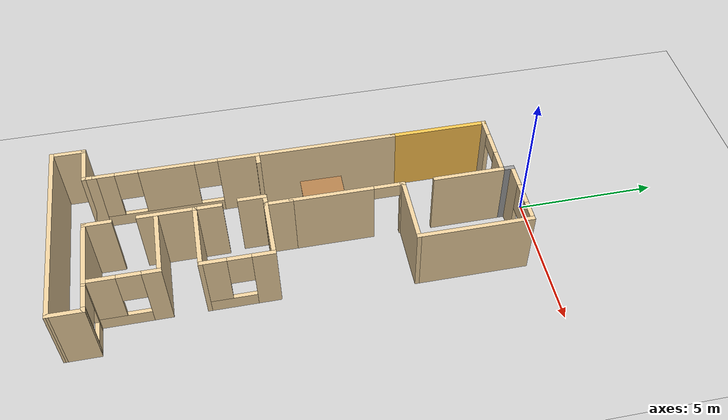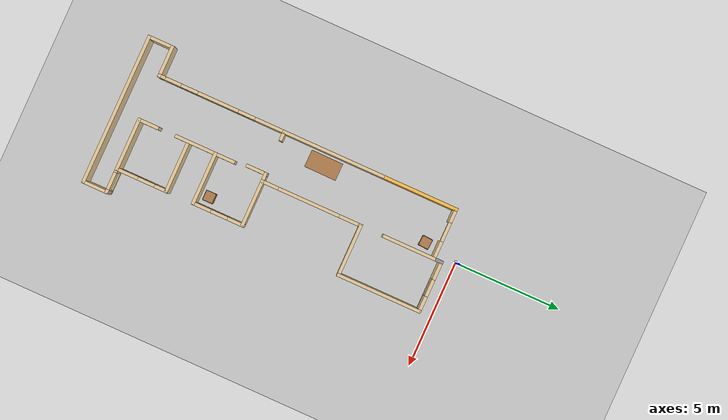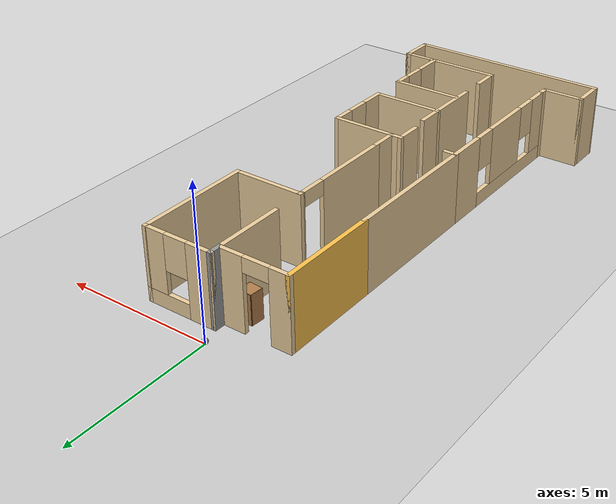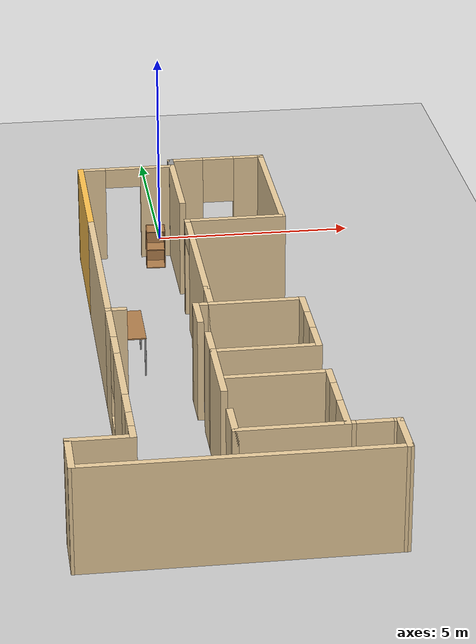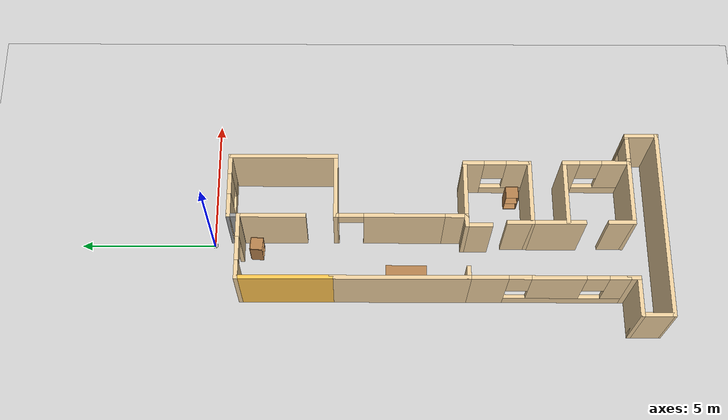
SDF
<sdf version="1.6">
 <world name="default">
  <light name="sun" type="directional">
   <pose>0 0 10 0 -0 0</pose>
   <diffuse>0.8 0.8 0.8 1</diffuse>
   <specular>0.2 0.2 0.2 1</specular>
   <attenuation>
    <range>1000</range>
    <constant>0.9</constant>
    <linear>0.01</linear>
    <quadratic>0.001</quadratic>
   </attenuation>
   <direction>-0.5 0.1 -0.9</direction>
  </light>
  <model name="ground_plane">
   <static>1</static>
   <link name="link">
    <collision name="collision">
     <geometry><plane><normal>0 0 1</normal><size>100 100</size></plane></geometry>
     <surface><friction><ode><mu>100</mu><mu2>50</mu2></ode></friction></surface>
    </collision>
    <visual name="visual">
     <cast_shadows>0</cast_shadows>
     <geometry><plane><normal>0 0 1</normal><size>100 100</size></plane></geometry>
     <material>
      <script><uri>file://media/materials/scripts/gazebo.material</uri><name>Gazebo/Grey</name></script>
     </material>
    </visual>
   </link>
  </model>
  <gravity>0 0 -9.8</gravity>
  <magnetic_field>6e-06 2.3e-05 -4.2e-05</magnetic_field>
  <atmosphere type="adiabatic"/>
  <physics name="default_physics" default="0" type="ode">
   <max_step_size>0.001</max_step_size>
   <real_time_factor>1</real_time_factor>
   <real_time_update_rate>1000</real_time_update_rate>
  </physics>
  <scene><ambient>0.4 0.4 0.4 1</ambient><background>0.7 0.7 0.7 1</background><shadows>1</shadows></scene>
  <spherical_coordinates>
   <surface_model>EARTH_WGS84</surface_model>
   <latitude_deg>0</latitude_deg>
   <longitude_deg>0</longitude_deg>
   <elevation>0</elevation>
   <heading_deg>0</heading_deg>
  </spherical_coordinates>
  <model name="my_appartment">
   <pose>-0.015 -8.49511 0 0 -0 0</pose>
   <link name="Wall_1">
    <pose>-0.93 7.45511 0 0 -0 0</pose>
    <visual name="Wall_1_Visual_0">
     <pose>-0.8975 0 1.25 0 -0 0</pose>
     <geometry><box><size>0.705 0.15 2.5</size></box></geometry>
     <material>
      <script><uri>file://media/materials/scripts/gazebo.material</uri><name>Gazebo/Grey</name></script>
      <ambient>0.921569 0.807843 0.615686 1</ambient>
     </material>
     <meta><layer>0</layer></meta>
    </visual>
    <collision name="Wall_1_Collision_0">
     <geometry><box><size>0.705 0.15 2.5</size></box></geometry>
     <pose>-0.8975 0 1.25 0 -0 0</pose>
    </collision>
    <visual name="Wall_1_Visual_1">
     <pose>0.8025 0 1.25 0 -0 0</pose>
     <geometry><box><size>0.895 0.15 2.5</size></box></geometry>
     <material>
      <script><uri>file://media/materials/scripts/gazebo.material</uri><name>Gazebo/Grey</name></script>
      <ambient>0.921569 0.807843 0.615686 1</ambient>
     </material>
     <meta><layer>0</layer></meta>
    </visual>
    <collision name="Wall_1_Collision_1">
     <geometry><box><size>0.895 0.15 2.5</size></box></geometry>
     <pose>0.8025 0 1.25 0 -0 0</pose>
    </collision>
    <visual name="Wall_1_Visual_2">
     <pose>-0.095 0 2.25 0 -0 0</pose>
     <geometry><box><size>0.9 0.15 0.5</size></box></geometry>
     <material>
      <script><uri>file://media/materials/scripts/gazebo.material</uri><name>Gazebo/Grey</name></script>
      <ambient>0.921569 0.807843 0.615686 1</ambient>
     </material>
     <meta><layer>0</layer></meta>
    </visual>
    <collision name="Wall_1_Collision_2">
     <geometry><box><size>0.9 0.15 0.5</size></box></geometry>
     <pose>-0.095 0 2.25 0 -0 0</pose>
    </collision>
   </link>
   <link name="Wall_11">
    <pose>0.245 2.04011 0 0 0 -1.5708</pose>
    <visual name="Wall_11_Visual_0">
     <pose>-1.9025 0 1.25 0 -0 0</pose>
     <geometry><box><size>0.195 0.15 2.5</size></box></geometry>
     <material>
      <script><uri>file://media/materials/scripts/gazebo.material</uri><name>Gazebo/Grey</name></script>
      <ambient>0.921569 0.807843 0.615686 1</ambient>
     </material>
     <meta><layer>0</layer></meta>
    </visual>
    <collision name="Wall_11_Collision_0">
     <geometry><box><size>0.195 0.15 2.5</size></box></geometry>
     <pose>-1.9025 0 1.25 0 -0 0</pose>
    </collision>
    <visual name="Wall_11_Visual_1">
     <pose>0.5475 0 1.25 0 -0 0</pose>
     <geometry><box><size>2.905 0.15 2.5</size></box></geometry>
     <material>
      <script><uri>file://media/materials/scripts/gazebo.material</uri><name>Gazebo/Grey</name></script>
      <ambient>0.921569 0.807843 0.615686 1</ambient>
     </material>
     <meta><layer>0</layer></meta>
    </visual>
    <collision name="Wall_11_Collision_1">
     <geometry><box><size>2.905 0.15 2.5</size></box></geometry>
     <pose>0.5475 0 1.25 0 -0 0</pose>
    </collision>
    <visual name="Wall_11_Visual_2">
     <pose>-1.355 0 2.25 0 -0 0</pose>
     <geometry><box><size>0.9 0.15 0.5</size></box></geometry>
     <material>
      <script><uri>file://media/materials/scripts/gazebo.material</uri><name>Gazebo/Grey</name></script>
      <ambient>0.921569 0.807843 0.615686 1</ambient>
     </material>
     <meta><layer>0</layer></meta>
    </visual>
    <collision name="Wall_11_Collision_2">
     <geometry><box><size>0.9 0.15 0.5</size></box></geometry>
     <pose>-1.355 0 2.25 0 -0 0</pose>
    </collision>
   </link>
   <link name="Wall_13">
    <collision name="Wall_13_Collision">
     <geometry><box><size>1 0.15 2.5</size></box></geometry>
     <pose>0 0 1.25 0 -0 0</pose>
    </collision>
    <visual name="Wall_13_Visual">
     <pose>0 0 1.25 0 -0 0</pose>
     <geometry><box><size>1 0.15 2.5</size></box></geometry>
     <material>
      <script><uri>file://media/materials/scripts/gazebo.material</uri><name>Gazebo/Grey</name></script>
      <ambient>0.921569 0.807843 0.615686 1</ambient>
     </material>
     <meta><layer>0</layer></meta>
    </visual>
    <pose>0.245 -0.309893 0 0 0 -1.5708</pose>
   </link>
   <link name="Wall_15">
    <collision name="Wall_15_Collision">
     <geometry><box><size>3.5 0.15 2.5</size></box></geometry>
     <pose>0 0 1.25 0 -0 0</pose>
    </collision>
    <visual name="Wall_15_Visual">
     <pose>0 0 1.25 0 -0 0</pose>
     <geometry><box><size>3.5 0.15 2.5</size></box></geometry>
     <material>
      <script><uri>file://media/materials/scripts/gazebo.material</uri><name>Gazebo/Grey</name></script>
      <ambient>1 0.764706 0.305882 1</ambient>
     </material>
     <meta><layer>0</layer></meta>
    </visual>
    <pose>-2.105 5.78011 0 0 0 -1.5708</pose>
   </link>
   <link name="Wall_18">
    <collision name="Wall_18_Collision">
     <geometry><box><size>5 0.15 2.5</size></box></geometry>
     <pose>0 0 1.25 0 -0 0</pose>
    </collision>
    <visual name="Wall_18_Visual">
     <pose>0 0 1.25 0 -0 0</pose>
     <geometry><box><size>5 0.15 2.5</size></box></geometry>
     <material>
      <script><uri>file://media/materials/scripts/gazebo.material</uri><name>Gazebo/Grey</name></script>
      <ambient>0.921569 0.807843 0.615686 1</ambient>
     </material>
     <meta><layer>0</layer></meta>
    </visual>
    <pose>-2.105 1.68011 0 0 0 -1.5708</pose>
   </link>
   <link name="Wall_19">
    <collision name="Wall_19_Collision">
     <geometry><box><size>0.5 0.15 2.5</size></box></geometry>
     <pose>0 0 1.25 0 -0 0</pose>
    </collision>
    <visual name="Wall_19_Visual">
     <pose>0 0 1.25 0 -0 0</pose>
     <geometry><box><size>0.5 0.15 2.5</size></box></geometry>
     <material>
      <script><uri>file://media/materials/scripts/gazebo.material</uri><name>Gazebo/Grey</name></script>
      <ambient>0.921569 0.807843 0.615686 1</ambient>
     </material>
     <meta><layer>0</layer></meta>
    </visual>
    <pose>-1.93 -0.744892 0 0 -0 0</pose>
   </link>
   <link name="Wall_2">
    <collision name="Wall_2_Collision">
     <geometry><box><size>0.52 0.15 2.5</size></box></geometry>
     <pose>0 0 1.25 0 -0 0</pose>
    </collision>
    <visual name="Wall_2_Visual">
     <pose>0 0 1.25 0 -0 0</pose>
     <geometry><box><size>0.52 0.15 2.5</size></box></geometry>
     <material>
      <script><uri>file://media/materials/scripts/gazebo.material</uri><name>Gazebo/Grey</name></script>
      <ambient>1 1 1 1</ambient>
     </material>
     <meta><layer>0</layer></meta>
    </visual>
    <pose>0.245 7.63011 0 0 -0 1.5708</pose>
   </link>
   <link name="Wall_21">
    <collision name="Wall_21_Collision">
     <geometry><box><size>0.5 0.15 2.5</size></box></geometry>
     <pose>0 0 1.25 0 -0 0</pose>
    </collision>
    <visual name="Wall_21_Visual">
     <pose>0 0 1.25 0 -0 0</pose>
     <geometry><box><size>0.5 0.15 2.5</size></box></geometry>
     <material>
      <script><uri>file://media/materials/scripts/gazebo.material</uri><name>Gazebo/Grey</name></script>
      <ambient>0.921569 0.807843 0.615686 1</ambient>
     </material>
     <meta><layer>0</layer></meta>
    </visual>
    <pose>0.07 -0.734892 0 0 -0 3.14159</pose>
   </link>
   <link name="Wall_23">
    <collision name="Wall_23_Collision">
     <geometry><box><size>1 0.15 2.5</size></box></geometry>
     <pose>0 0 1.25 0 -0 0</pose>
    </collision>
    <visual name="Wall_23_Visual">
     <pose>0 0 1.25 0 -0 0</pose>
     <geometry><box><size>1 0.15 2.5</size></box></geometry>
     <material>
      <script><uri>file://media/materials/scripts/gazebo.material</uri><name>Gazebo/Grey</name></script>
      <ambient>0.921569 0.807843 0.615686 1</ambient>
     </material>
     <meta><layer>0</layer></meta>
    </visual>
    <pose>-0.105 -1.15989 0 0 0 -1.5708</pose>
   </link>
   <link name="Wall_25">
    <collision name="Wall_25_Collision">
     <geometry><box><size>2.25 0.15 2.5</size></box></geometry>
     <pose>0 0 1.25 0 -0 0</pose>
    </collision>
    <visual name="Wall_25_Visual">
     <pose>0 0 1.25 0 -0 0</pose>
     <geometry><box><size>2.25 0.15 2.5</size></box></geometry>
     <material>
      <script><uri>file://media/materials/scripts/gazebo.material</uri><name>Gazebo/Grey</name></script>
      <ambient>0.921569 0.807843 0.615686 1</ambient>
     </material>
     <meta><layer>0</layer></meta>
    </visual>
    <pose>1.295 -0.734892 0 0 -0 0</pose>
   </link>
   <link name="Wall_26">
    <pose>2.345 -1.90989 0 0 0 -1.5708</pose>
    <visual name="Wall_26_Visual_0">
     <pose>-0.8575 0 1.25 0 -0 0</pose>
     <geometry><box><size>0.785 0.15 2.5</size></box></geometry>
     <material>
      <script><uri>file://media/materials/scripts/gazebo.material</uri><name>Gazebo/Grey</name></script>
      <ambient>0.921569 0.807843 0.615686 1</ambient>
     </material>
     <meta><layer>0</layer></meta>
    </visual>
    <collision name="Wall_26_Collision_0">
     <geometry><box><size>0.785 0.15 2.5</size></box></geometry>
     <pose>-0.8575 0 1.25 0 -0 0</pose>
    </collision>
    <visual name="Wall_26_Visual_1">
     <pose>0.3925 0 0.25 0 -0 0</pose>
     <geometry><box><size>1.715 0.15 0.5</size></box></geometry>
     <material>
      <script><uri>file://media/materials/scripts/gazebo.material</uri><name>Gazebo/Grey</name></script>
      <ambient>0.921569 0.807843 0.615686 1</ambient>
     </material>
     <meta><layer>0</layer></meta>
    </visual>
    <collision name="Wall_26_Collision_1">
     <geometry><box><size>1.715 0.15 0.5</size></box></geometry>
     <pose>0.3925 0 0.25 0 -0 0</pose>
    </collision>
    <visual name="Wall_26_Visual_2">
     <pose>0.7925 0 1.5 0 -0 0</pose>
     <geometry><box><size>0.915 0.15 2</size></box></geometry>
     <material>
      <script><uri>file://media/materials/scripts/gazebo.material</uri><name>Gazebo/Grey</name></script>
      <ambient>0.921569 0.807843 0.615686 1</ambient>
     </material>
     <meta><layer>0</layer></meta>
    </visual>
    <collision name="Wall_26_Collision_2">
     <geometry><box><size>0.915 0.15 2</size></box></geometry>
     <pose>0.7925 0 1.5 0 -0 0</pose>
    </collision>
    <visual name="Wall_26_Visual_3">
     <pose>-0.065 0 1.9 0 -0 0</pose>
     <geometry><box><size>0.8 0.15 1.2</size></box></geometry>
     <material>
      <script><uri>file://media/materials/scripts/gazebo.material</uri><name>Gazebo/Grey</name></script>
      <ambient>0.921569 0.807843 0.615686 1</ambient>
     </material>
     <meta><layer>0</layer></meta>
    </visual>
    <collision name="Wall_26_Collision_3">
     <geometry><box><size>0.8 0.15 1.2</size></box></geometry>
     <pose>-0.065 0 1.9 0 -0 0</pose>
    </collision>
   </link>
   <link name="Wall_29">
    <collision name="Wall_29_Collision">
     <geometry><box><size>2.5 0.15 2.5</size></box></geometry>
     <pose>0 0 1.25 0 -0 0</pose>
    </collision>
    <visual name="Wall_29_Visual">
     <pose>0 0 1.25 0 -0 0</pose>
     <geometry><box><size>2.5 0.15 2.5</size></box></geometry>
     <material>
      <script><uri>file://media/materials/scripts/gazebo.material</uri><name>Gazebo/Grey</name></script>
      <ambient>0.921569 0.807843 0.615686 1</ambient>
     </material>
     <meta><layer>0</layer></meta>
    </visual>
    <pose>1.17 -3.08489 0 0 -0 3.14159</pose>
   </link>
   <link name="Wall_30">
    <collision name="Wall_30_Collision">
     <geometry><box><size>1 0.15 2.5</size></box></geometry>
     <pose>0 0 1.25 0 -0 0</pose>
    </collision>
    <visual name="Wall_30_Visual">
     <pose>0 0 1.25 0 -0 0</pose>
     <geometry><box><size>1 0.15 2.5</size></box></geometry>
     <material>
      <script><uri>file://media/materials/scripts/gazebo.material</uri><name>Gazebo/Grey</name></script>
      <ambient>0.921569 0.807843 0.615686 1</ambient>
     </material>
     <meta><layer>0</layer></meta>
    </visual>
    <pose>-0.005 -2.65989 0 0 -0 1.5708</pose>
   </link>
   <link name="Wall_32">
    <collision name="Wall_32_Collision">
     <geometry><box><size>2 0.15 2.5</size></box></geometry>
     <pose>0 0 1.25 0 -0 0</pose>
    </collision>
    <visual name="Wall_32_Visual">
     <pose>0 0 1.25 0 -0 0</pose>
     <geometry><box><size>2 0.15 2.5</size></box></geometry>
     <material>
      <script><uri>file://media/materials/scripts/gazebo.material</uri><name>Gazebo/Grey</name></script>
      <ambient>0.921569 0.807843 0.615686 1</ambient>
     </material>
     <meta><layer>0</layer></meta>
    </visual>
    <pose>-0.005 -4.00989 0 0 0 -1.5708</pose>
   </link>
   <link name="Wall_34">
    <collision name="Wall_34_Collision">
     <geometry><box><size>2.5 0.15 2.5</size></box></geometry>
     <pose>0 0 1.25 0 -0 0</pose>
    </collision>
    <visual name="Wall_34_Visual">
     <pose>0 0 1.25 0 -0 0</pose>
     <geometry><box><size>2.5 0.15 2.5</size></box></geometry>
     <material>
      <script><uri>file://media/materials/scripts/gazebo.material</uri><name>Gazebo/Grey</name></script>
      <ambient>0.921569 0.807843 0.615686 1</ambient>
     </material>
     <meta><layer>0</layer></meta>
    </visual>
    <pose>1.18 -4.36489 0 0 -0 0</pose>
   </link>
   <link name="Wall_36">
    <pose>2.355 -5.53989 0 0 0 -1.5708</pose>
    <visual name="Wall_36_Visual_0">
     <pose>-0.9325 0 1.25 0 -0 0</pose>
     <geometry><box><size>0.635 0.15 2.5</size></box></geometry>
     <material>
      <script><uri>file://media/materials/scripts/gazebo.material</uri><name>Gazebo/Grey</name></script>
      <ambient>0.921569 0.807843 0.615686 1</ambient>
     </material>
     <meta><layer>0</layer></meta>
    </visual>
    <collision name="Wall_36_Collision_0">
     <geometry><box><size>0.635 0.15 2.5</size></box></geometry>
     <pose>-0.9325 0 1.25 0 -0 0</pose>
    </collision>
    <visual name="Wall_36_Visual_1">
     <pose>0.3175 0 0.25 0 -0 0</pose>
     <geometry><box><size>1.865 0.15 0.5</size></box></geometry>
     <material>
      <script><uri>file://media/materials/scripts/gazebo.material</uri><name>Gazebo/Grey</name></script>
      <ambient>0.921569 0.807843 0.615686 1</ambient>
     </material>
     <meta><layer>0</layer></meta>
    </visual>
    <collision name="Wall_36_Collision_1">
     <geometry><box><size>1.865 0.15 0.5</size></box></geometry>
     <pose>0.3175 0 0.25 0 -0 0</pose>
    </collision>
    <visual name="Wall_36_Visual_2">
     <pose>0.7175 0 1.5 0 -0 0</pose>
     <geometry><box><size>1.065 0.15 2</size></box></geometry>
     <material>
      <script><uri>file://media/materials/scripts/gazebo.material</uri><name>Gazebo/Grey</name></script>
      <ambient>0.921569 0.807843 0.615686 1</ambient>
     </material>
     <meta><layer>0</layer></meta>
    </visual>
    <collision name="Wall_36_Collision_2">
     <geometry><box><size>1.065 0.15 2</size></box></geometry>
     <pose>0.7175 0 1.5 0 -0 0</pose>
    </collision>
    <visual name="Wall_36_Visual_3">
     <pose>-0.215 0 1.9 0 -0 0</pose>
     <geometry><box><size>0.8 0.15 1.2</size></box></geometry>
     <material>
      <script><uri>file://media/materials/scripts/gazebo.material</uri><name>Gazebo/Grey</name></script>
      <ambient>0.921569 0.807843 0.615686 1</ambient>
     </material>
     <meta><layer>0</layer></meta>
    </visual>
    <collision name="Wall_36_Collision_3">
     <geometry><box><size>0.8 0.15 1.2</size></box></geometry>
     <pose>-0.215 0 1.9 0 -0 0</pose>
    </collision>
   </link>
   <link name="Wall_37">
    <collision name="Wall_37_Collision">
     <geometry><box><size>2.5 0.15 2.5</size></box></geometry>
     <pose>0 0 1.25 0 -0 0</pose>
    </collision>
    <visual name="Wall_37_Visual">
     <pose>0 0 1.25 0 -0 0</pose>
     <geometry><box><size>2.5 0.15 2.5</size></box></geometry>
     <material>
      <script><uri>file://media/materials/scripts/gazebo.material</uri><name>Gazebo/Grey</name></script>
      <ambient>0.921569 0.807843 0.615686 1</ambient>
     </material>
     <meta><layer>0</layer></meta>
    </visual>
    <pose>1.18 -6.71489 0 0 -0 3.14159</pose>
   </link>
   <link name="Wall_38">
    <collision name="Wall_38_Collision">
     <geometry><box><size>1 0.15 2.5</size></box></geometry>
     <pose>0 0 1.25 0 -0 0</pose>
    </collision>
    <visual name="Wall_38_Visual">
     <pose>0 0 1.25 0 -0 0</pose>
     <geometry><box><size>1 0.15 2.5</size></box></geometry>
     <material>
      <script><uri>file://media/materials/scripts/gazebo.material</uri><name>Gazebo/Grey</name></script>
      <ambient>0.921569 0.807843 0.615686 1</ambient>
     </material>
     <meta><layer>0</layer></meta>
    </visual>
    <pose>0.005 -6.28989 0 0 -0 1.5708</pose>
   </link>
   <link name="Wall_4">
    <pose>1.42 7.81511 0 0 -0 0</pose>
    <visual name="Wall_4_Visual_0">
     <pose>-0.7925 0 1.25 0 -0 0</pose>
     <geometry><box><size>0.915 0.15 2.5</size></box></geometry>
     <material>
      <script><uri>file://media/materials/scripts/gazebo.material</uri><name>Gazebo/Grey</name></script>
      <ambient>0.921569 0.807843 0.615686 1</ambient>
     </material>
     <meta><layer>0</layer></meta>
    </visual>
    <collision name="Wall_4_Collision_0">
     <geometry><box><size>0.915 0.15 2.5</size></box></geometry>
     <pose>-0.7925 0 1.25 0 -0 0</pose>
    </collision>
    <visual name="Wall_4_Visual_1">
     <pose>0.4575 0 0.25 0 -0 0</pose>
     <geometry><box><size>1.585 0.15 0.5</size></box></geometry>
     <material>
      <script><uri>file://media/materials/scripts/gazebo.material</uri><name>Gazebo/Grey</name></script>
      <ambient>0.921569 0.807843 0.615686 1</ambient>
     </material>
     <meta><layer>0</layer></meta>
    </visual>
    <collision name="Wall_4_Collision_1">
     <geometry><box><size>1.585 0.15 0.5</size></box></geometry>
     <pose>0.4575 0 0.25 0 -0 0</pose>
    </collision>
    <visual name="Wall_4_Visual_2">
     <pose>0.8575 0 1.5 0 -0 0</pose>
     <geometry><box><size>0.785 0.15 2</size></box></geometry>
     <material>
      <script><uri>file://media/materials/scripts/gazebo.material</uri><name>Gazebo/Grey</name></script>
      <ambient>0.921569 0.807843 0.615686 1</ambient>
     </material>
     <meta><layer>0</layer></meta>
    </visual>
    <collision name="Wall_4_Collision_2">
     <geometry><box><size>0.785 0.15 2</size></box></geometry>
     <pose>0.8575 0 1.5 0 -0 0</pose>
    </collision>
    <visual name="Wall_4_Visual_3">
     <pose>0.065 0 1.9 0 -0 0</pose>
     <geometry><box><size>0.8 0.15 1.2</size></box></geometry>
     <material>
      <script><uri>file://media/materials/scripts/gazebo.material</uri><name>Gazebo/Grey</name></script>
      <ambient>0.921569 0.807843 0.615686 1</ambient>
     </material>
     <meta><layer>0</layer></meta>
    </visual>
    <collision name="Wall_4_Collision_3">
     <geometry><box><size>0.8 0.15 1.2</size></box></geometry>
     <pose>0.065 0 1.9 0 -0 0</pose>
    </collision>
   </link>
   <link name="Wall_40">
    <pose>-2.105 -3.54489 0 0 0 -1.5708</pose>
    <visual name="Wall_40_Visual_0">
     <pose>-2.1425 0 1.25 0 -0 0</pose>
     <geometry><box><size>1.465 0.15 2.5</size></box></geometry>
     <material>
      <script><uri>file://media/materials/scripts/gazebo.material</uri><name>Gazebo/Grey</name></script>
      <ambient>0.921569 0.807843 0.615686 1</ambient>
     </material>
     <meta><layer>0</layer></meta>
    </visual>
    <collision name="Wall_40_Collision_0">
     <geometry><box><size>1.465 0.15 2.5</size></box></geometry>
     <pose>-2.1425 0 1.25 0 -0 0</pose>
    </collision>
    <visual name="Wall_40_Visual_1">
     <pose>0.7325 0 0.25 0 -0 0</pose>
     <geometry><box><size>4.285 0.15 0.5</size></box></geometry>
     <material>
      <script><uri>file://media/materials/scripts/gazebo.material</uri><name>Gazebo/Grey</name></script>
      <ambient>0.921569 0.807843 0.615686 1</ambient>
     </material>
     <meta><layer>0</layer></meta>
    </visual>
    <collision name="Wall_40_Collision_1">
     <geometry><box><size>4.285 0.15 0.5</size></box></geometry>
     <pose>0.7325 0 0.25 0 -0 0</pose>
    </collision>
    <visual name="Wall_40_Visual_2">
     <pose>0.355 0 1.5 0 -0 0</pose>
     <geometry><box><size>1.93 0.15 2</size></box></geometry>
     <material>
      <script><uri>file://media/materials/scripts/gazebo.material</uri><name>Gazebo/Grey</name></script>
      <ambient>0.921569 0.807843 0.615686 1</ambient>
     </material>
     <meta><layer>0</layer></meta>
    </visual>
    <collision name="Wall_40_Collision_2">
     <geometry><box><size>1.93 0.15 2</size></box></geometry>
     <pose>0.355 0 1.5 0 -0 0</pose>
    </collision>
    <visual name="Wall_40_Visual_3">
     <pose>2.4975 0 1.5 0 -0 0</pose>
     <geometry><box><size>0.755 0.15 2</size></box></geometry>
     <material>
      <script><uri>file://media/materials/scripts/gazebo.material</uri><name>Gazebo/Grey</name></script>
      <ambient>0.921569 0.807843 0.615686 1</ambient>
     </material>
     <meta><layer>0</layer></meta>
    </visual>
    <collision name="Wall_40_Collision_3">
     <geometry><box><size>0.755 0.15 2</size></box></geometry>
     <pose>2.4975 0 1.5 0 -0 0</pose>
    </collision>
    <visual name="Wall_40_Visual_4">
     <pose>-1.01 0 1.9 0 -0 0</pose>
     <geometry><box><size>0.8 0.15 1.2</size></box></geometry>
     <material>
      <script><uri>file://media/materials/scripts/gazebo.material</uri><name>Gazebo/Grey</name></script>
      <ambient>0.921569 0.807843 0.615686 1</ambient>
     </material>
     <meta><layer>0</layer></meta>
    </visual>
    <collision name="Wall_40_Collision_4">
     <geometry><box><size>0.8 0.15 1.2</size></box></geometry>
     <pose>-1.01 0 1.9 0 -0 0</pose>
    </collision>
    <visual name="Wall_40_Visual_5">
     <pose>1.72 0 1.9 0 -0 0</pose>
     <geometry><box><size>0.8 0.15 1.2</size></box></geometry>
     <material>
      <script><uri>file://media/materials/scripts/gazebo.material</uri><name>Gazebo/Grey</name></script>
      <ambient>0.921569 0.807843 0.615686 1</ambient>
     </material>
     <meta><layer>0</layer></meta>
    </visual>
    <collision name="Wall_40_Collision_5">
     <geometry><box><size>0.8 0.15 1.2</size></box></geometry>
     <pose>1.72 0 1.9 0 -0 0</pose>
    </collision>
   </link>
   <link name="Wall_42">
    <collision name="Wall_42_Collision">
     <geometry><box><size>0.5 0.15 2.5</size></box></geometry>
     <pose>0 0 1.25 0 -0 0</pose>
    </collision>
    <visual name="Wall_42_Visual">
     <pose>0 0 1.25 0 -0 0</pose>
     <geometry><box><size>0.5 0.15 2.5</size></box></geometry>
     <material>
      <script><uri>file://media/materials/scripts/gazebo.material</uri><name>Gazebo/Grey</name></script>
      <ambient>0.921569 0.807843 0.615686 1</ambient>
     </material>
     <meta><layer>0</layer></meta>
    </visual>
    <pose>-2.105 -6.51989 0 0 0 -1.5708</pose>
   </link>
   <link name="Wall_44">
    <collision name="Wall_44_Collision">
     <geometry><box><size>1.5 0.15 2.5</size></box></geometry>
     <pose>0 0 1.25 0 -0 0</pose>
    </collision>
    <visual name="Wall_44_Visual">
     <pose>0 0 1.25 0 -0 0</pose>
     <geometry><box><size>1.5 0.15 2.5</size></box></geometry>
     <material>
      <script><uri>file://media/materials/scripts/gazebo.material</uri><name>Gazebo/Grey</name></script>
      <ambient>0.921569 0.807843 0.615686 1</ambient>
     </material>
     <meta><layer>0</layer></meta>
    </visual>
    <pose>-2.78 -6.69489 0 0 -0 3.14159</pose>
   </link>
   <link name="Wall_45">
    <collision name="Wall_45_Collision">
     <geometry><box><size>1.25 0.15 2.5</size></box></geometry>
     <pose>0 0 1.25 0 -0 0</pose>
    </collision>
    <visual name="Wall_45_Visual">
     <pose>0 0 1.25 0 -0 0</pose>
     <geometry><box><size>1.25 0.15 2.5</size></box></geometry>
     <material>
      <script><uri>file://media/materials/scripts/gazebo.material</uri><name>Gazebo/Grey</name></script>
      <ambient>0.921569 0.807843 0.615686 1</ambient>
     </material>
     <meta><layer>0</layer></meta>
    </visual>
    <pose>-3.455 -7.24489 0 0 0 -1.5708</pose>
   </link>
   <link name="Wall_47">
    <pose>2.905 -6.71489 0 0 -0 0</pose>
    <visual name="Wall_47_Visual_0">
     <pose>-0.5025 0 1.25 0 -0 0</pose>
     <geometry><box><size>0.245 0.15 2.5</size></box></geometry>
     <material>
      <script><uri>file://media/materials/scripts/gazebo.material</uri><name>Gazebo/Grey</name></script>
      <ambient>0.921569 0.807843 0.615686 1</ambient>
     </material>
     <meta><layer>0</layer></meta>
    </visual>
    <collision name="Wall_47_Collision_0">
     <geometry><box><size>0.245 0.15 2.5</size></box></geometry>
     <pose>-0.5025 0 1.25 0 -0 0</pose>
    </collision>
    <visual name="Wall_47_Visual_1">
     <pose>0.1225 0 0.25 0 -0 0</pose>
     <geometry><box><size>1.005 0.15 0.5</size></box></geometry>
     <material>
      <script><uri>file://media/materials/scripts/gazebo.material</uri><name>Gazebo/Grey</name></script>
      <ambient>0.921569 0.807843 0.615686 1</ambient>
     </material>
     <meta><layer>0</layer></meta>
    </visual>
    <collision name="Wall_47_Collision_1">
     <geometry><box><size>1.005 0.15 0.5</size></box></geometry>
     <pose>0.1225 0 0.25 0 -0 0</pose>
    </collision>
    <visual name="Wall_47_Visual_2">
     <pose>0.5225 0 1.5 0 -0 0</pose>
     <geometry><box><size>0.205 0.15 2</size></box></geometry>
     <material>
      <script><uri>file://media/materials/scripts/gazebo.material</uri><name>Gazebo/Grey</name></script>
      <ambient>0.921569 0.807843 0.615686 1</ambient>
     </material>
     <meta><layer>0</layer></meta>
    </visual>
    <collision name="Wall_47_Collision_2">
     <geometry><box><size>0.205 0.15 2</size></box></geometry>
     <pose>0.5225 0 1.5 0 -0 0</pose>
    </collision>
    <visual name="Wall_47_Visual_3">
     <pose>0.02 0 1.9 0 -0 0</pose>
     <geometry><box><size>0.8 0.15 1.2</size></box></geometry>
     <material>
      <script><uri>file://media/materials/scripts/gazebo.material</uri><name>Gazebo/Grey</name></script>
      <ambient>0.921569 0.807843 0.615686 1</ambient>
     </material>
     <meta><layer>0</layer></meta>
    </visual>
    <collision name="Wall_47_Collision_3">
     <geometry><box><size>0.8 0.15 1.2</size></box></geometry>
     <pose>0.02 0 1.9 0 -0 0</pose>
    </collision>
   </link>
   <link name="Wall_48">
    <collision name="Wall_48_Collision">
     <geometry><box><size>1.25 0.15 2.5</size></box></geometry>
     <pose>0 0 1.25 0 -0 0</pose>
    </collision>
    <visual name="Wall_48_Visual">
     <pose>0 0 1.25 0 -0 0</pose>
     <geometry><box><size>1.25 0.15 2.5</size></box></geometry>
     <material>
      <script><uri>file://media/materials/scripts/gazebo.material</uri><name>Gazebo/Grey</name></script>
      <ambient>0.921569 0.807843 0.615686 1</ambient>
     </material>
     <meta><layer>0</layer></meta>
    </visual>
    <pose>3.455 -7.26489 0 0 0 -1.5708</pose>
   </link>
   <link name="Wall_49">
    <collision name="Wall_49_Collision">
     <geometry><box><size>7.06003 0.15 2.5</size></box></geometry>
     <pose>0 0 1.25 0 -0 0</pose>
    </collision>
    <visual name="Wall_49_Visual">
     <pose>0 0 1.25 0 -0 0</pose>
     <geometry><box><size>7.06003 0.15 2.5</size></box></geometry>
     <material>
      <script><uri>file://media/materials/scripts/gazebo.material</uri><name>Gazebo/Grey</name></script>
      <ambient>0.921569 0.807843 0.615686 1</ambient>
     </material>
     <meta><layer>0</layer></meta>
    </visual>
    <pose>0 -7.80489 0 0 -0 3.1387</pose>
   </link>
   <link name="Wall_6">
    <collision name="Wall_6_Collision">
     <geometry><box><size>2.5 0.15 2.5</size></box></geometry>
     <pose>0 0 1.25 0 -0 0</pose>
    </collision>
    <visual name="Wall_6_Visual">
     <pose>0 0 1.25 0 -0 0</pose>
     <geometry><box><size>2.5 0.15 2.5</size></box></geometry>
     <material>
      <script><uri>file://media/materials/scripts/gazebo.material</uri><name>Gazebo/Grey</name></script>
      <ambient>0.921569 0.807843 0.615686 1</ambient>
     </material>
     <meta><layer>0</layer></meta>
    </visual>
    <pose>0.245 6.27011 0 0 0 -1.5708</pose>
   </link>
   <link name="Wall_8">
    <collision name="Wall_8_Collision">
     <geometry><box><size>4 0.15 2.5</size></box></geometry>
     <pose>0 0 1.25 0 -0 0</pose>
    </collision>
    <visual name="Wall_8_Visual">
     <pose>0 0 1.25 0 -0 0</pose>
     <geometry><box><size>4 0.15 2.5</size></box></geometry>
     <material>
      <script><uri>file://media/materials/scripts/gazebo.material</uri><name>Gazebo/Grey</name></script>
      <ambient>0.921569 0.807843 0.615686 1</ambient>
     </material>
     <meta><layer>0</layer></meta>
    </visual>
    <pose>2.595 5.89011 0 0 0 -1.5708</pose>
   </link>
   <link name="Wall_9">
    <collision name="Wall_9_Collision">
     <geometry><box><size>2.5 0.15 2.5</size></box></geometry>
     <pose>0 0 1.25 0 -0 0</pose>
    </collision>
    <visual name="Wall_9_Visual">
     <pose>0 0 1.25 0 -0 0</pose>
     <geometry><box><size>2.5 0.15 2.5</size></box></geometry>
     <material>
      <script><uri>file://media/materials/scripts/gazebo.material</uri><name>Gazebo/Grey</name></script>
      <ambient>0.921569 0.807843 0.615686 1</ambient>
     </material>
     <meta><layer>0</layer></meta>
    </visual>
    <pose>1.42 3.96511 0 0 -0 3.14159</pose>
   </link>
   <static>1</static>
  </model>
  <model name="my_ball">
   <pose>0 0 0.1 0 -0 0</pose>
   <link name="link_0">
    <inertial>
     <mass>1</mass>
     <inertia><ixx>0.1</ixx><ixy>0</ixy><ixz>0</ixz><iyy>0.1</iyy><iyz>0</iyz><izz>0.1</izz></inertia>
    </inertial>
    <visual name="visual">
     <geometry><sphere><radius>0.1</radius></sphere></geometry>
     <material>
      <lighting>1</lighting>
      <script><uri>file://media/materials/scripts/gazebo.material</uri><name>Gazebo/Grey</name></script>
      <shader type="pixel"><normal_map>__default__</normal_map></shader>
      <ambient>1 1 1 1</ambient>
      <diffuse>1 1 1 1</diffuse>
      <specular>1 1 1 1</specular>
      <emissive>1 1 1 1</emissive>
     </material>
    </visual>
    <collision name="collision">
     <geometry><sphere><radius>0.1</radius></sphere></geometry>
     <surface>
      <friction>
       <ode><mu>1</mu><mu2>1</mu2><fdir1>0 0 0</fdir1><slip1>0</slip1><slip2>0</slip2></ode>
       <torsional>
        <coefficient>1</coefficient>
        <patch_radius>0</patch_radius>
        <surface_radius>0</surface_radius>
        <use_patch_radius>1</use_patch_radius>
        <ode><slip>0</slip></ode>
       </torsional>
      </friction>
      <bounce><restitution_coefficient>0</restitution_coefficient><threshold>1e+06</threshold></bounce>
      <contact>
       <collide_without_contact>0</collide_without_contact>
       <collide_without_contact_bitmask>1</collide_without_contact_bitmask>
       <collide_bitmask>1</collide_bitmask>
       <ode>
        <soft_cfm>0</soft_cfm>
        <soft_erp>0.2</soft_erp>
        <kp>1e+13</kp>
        <kd>1</kd>
        <max_vel>0.01</max_vel>
        <min_depth>0</min_depth>
       </ode>
       <bullet>
        <split_impulse>1</split_impulse>
        <split_impulse_penetration_threshold>-0.01</split_impulse_penetration_threshold>
        <soft_cfm>0</soft_cfm>
        <soft_erp>0.2</soft_erp>
        <kp>1e+13</kp>
        <kd>1</kd>
       </bullet>
      </contact>
     </surface>
    </collision>
   </link>
   <static>0</static>
  </model>
  <model name="table">
   <static>1</static>
   <link name="link">
    <collision name="surface">
     <pose>0 0 1 0 -0 0</pose>
     <geometry><box><size>1.5 0.8 0.03</size></box></geometry>
     <surface><friction><ode><mu>0.6</mu><mu2>0.6</mu2></ode></friction></surface>
    </collision>
    <visual name="visual1">
     <pose>0 0 1 0 -0 0</pose>
     <geometry><box><size>1.5 0.8 0.03</size></box></geometry>
     <material>
      <script><uri>file://media/materials/scripts/gazebo.material</uri><name>Gazebo/Wood</name></script>
     </material>
    </visual>
    <collision name="front_left_leg">
     <pose>0.68 0.38 0.5 0 -0 0</pose>
     <geometry><cylinder><radius>0.02</radius><length>1</length></cylinder></geometry>
    </collision>
    <visual name="front_left_leg">
     <pose>0.68 0.38 0.5 0 -0 0</pose>
     <geometry><cylinder><radius>0.02</radius><length>1</length></cylinder></geometry>
     <material>
      <script><uri>file://media/materials/scripts/gazebo.material</uri><name>Gazebo/Grey</name></script>
     </material>
    </visual>
    <collision name="front_right_leg">
     <pose>0.68 -0.38 0.5 0 -0 0</pose>
     <geometry><cylinder><radius>0.02</radius><length>1</length></cylinder></geometry>
    </collision>
    <visual name="front_right_leg">
     <pose>0.68 -0.38 0.5 0 -0 0</pose>
     <geometry><cylinder><radius>0.02</radius><length>1</length></cylinder></geometry>
     <material>
      <script><uri>file://media/materials/scripts/gazebo.material</uri><name>Gazebo/Grey</name></script>
     </material>
    </visual>
    <collision name="back_right_leg">
     <pose>-0.68 -0.38 0.5 0 -0 0</pose>
     <geometry><cylinder><radius>0.02</radius><length>1</length></cylinder></geometry>
    </collision>
    <visual name="back_right_leg">
     <pose>-0.68 -0.38 0.5 0 -0 0</pose>
     <geometry><cylinder><radius>0.02</radius><length>1</length></cylinder></geometry>
     <material>
      <script><uri>file://media/materials/scripts/gazebo.material</uri><name>Gazebo/Grey</name></script>
     </material>
    </visual>
    <collision name="back_left_leg">
     <pose>-0.68 0.38 0.5 0 -0 0</pose>
     <geometry><cylinder><radius>0.02</radius><length>1</length></cylinder></geometry>
    </collision>
    <visual name="back_left_leg">
     <pose>-0.68 0.38 0.5 0 -0 0</pose>
     <geometry><cylinder><radius>0.02</radius><length>1</length></cylinder></geometry>
     <material>
      <script><uri>file://media/materials/scripts/gazebo.material</uri><name>Gazebo/Grey</name></script>
     </material>
    </visual>
   </link>
   <pose>-1.52354 -7.09409 0 0 -0 1.56264</pose>
  </model>
  <model name="cabinet">
   <static>1</static>
   <link name="cabinet_bottom_plate">
    <inertial>
     <pose>0 0 -1 0 -0 0</pose>
     <inertia><ixx>2.05</ixx><ixy>0</ixy><ixz>0</ixz><iyy>2.05</iyy><iyz>0</iyz><izz>2.05</izz></inertia>
     <mass>25</mass>
    </inertial>
    <collision name="cabinet_bottom_plate_geom">
     <pose>0 0 0.01 0 -0 0</pose>
     <geometry><box><size>0.45 0.45 0.02</size></box></geometry>
    </collision>
    <visual name="cabinet_bottom_plate_geom_visual">
     <pose>0 0 0.01 0 -0 0</pose>
     <geometry><box><size>0.45 0.45 0.02</size></box></geometry>
     <material>
      <script><uri>file://media/materials/scripts/gazebo.material</uri><name>Gazebo/Wood</name></script>
     </material>
    </visual>
    <collision name="cabinet_bottom_plate_geom_cabinet_back_plate">
     <pose>0.235 0 0.51 0 -0 0</pose>
     <geometry><box><size>0.02 0.45 1.02</size></box></geometry>
    </collision>
    <visual name="cabinet_bottom_plate_geom_cabinet_back_plate_visual">
     <pose>0.235 0 0.51 0 -0 0</pose>
     <geometry><box><size>0.02 0.45 1.02</size></box></geometry>
     <material>
      <script><uri>file://media/materials/scripts/gazebo.material</uri><name>Gazebo/Wood</name></script>
     </material>
    </visual>
    <collision name="cabinet_bottom_plate_geom_cabinet_left_plate">
     <pose>0 0.235 0.51 0 -0 0</pose>
     <geometry><box><size>0.45 0.02 1.02</size></box></geometry>
    </collision>
    <visual name="cabinet_bottom_plate_geom_cabinet_left_plate_visual">
     <pose>0 0.235 0.51 0 -0 0</pose>
     <geometry><box><size>0.45 0.02 1.02</size></box></geometry>
     <material>
      <script><uri>file://media/materials/scripts/gazebo.material</uri><name>Gazebo/Wood</name></script>
     </material>
    </visual>
    <collision name="cabinet_bottom_plate_geom_cabinet_middle_plate">
     <pose>0 0 0.51 0 -0 0</pose>
     <geometry><box><size>0.45 0.45 0.02</size></box></geometry>
    </collision>
    <visual name="cabinet_bottom_plate_geom_cabinet_middle_plate_visual">
     <pose>0 0 0.51 0 -0 0</pose>
     <geometry><box><size>0.45 0.45 0.02</size></box></geometry>
     <material>
      <script><uri>file://media/materials/scripts/gazebo.material</uri><name>Gazebo/Wood</name></script>
     </material>
    </visual>
    <collision name="cabinet_bottom_plate_geom_cabinet_right_plate">
     <pose>0 -0.235 0.51 0 -0 0</pose>
     <geometry><box><size>0.45 0.02 1.02</size></box></geometry>
    </collision>
    <visual name="cabinet_bottom_plate_geom_cabinet_right_plate_visual">
     <pose>0 -0.235 0.51 0 -0 0</pose>
     <geometry><box><size>0.45 0.02 1.02</size></box></geometry>
     <material>
      <script><uri>file://media/materials/scripts/gazebo.material</uri><name>Gazebo/Wood</name></script>
     </material>
    </visual>
    <collision name="cabinet_bottom_plate_geom_cabinet_top_plate">
     <pose>0 0 1.01 0 -0 0</pose>
     <geometry><box><size>0.45 0.45 0.02</size></box></geometry>
    </collision>
    <visual name="cabinet_bottom_plate_geom_cabinet_top_plate_visual">
     <pose>0 0 1.01 0 -0 0</pose>
     <geometry><box><size>0.45 0.45 0.02</size></box></geometry>
     <material>
      <script><uri>file://media/materials/scripts/gazebo.material</uri><name>Gazebo/Wood</name></script>
     </material>
    </visual>
   </link>
   <pose>1.80834 -11.1064 0 0 -0 0</pose>
  </model>
  <model name="cabinet_0">
   <static>1</static>
   <link name="cabinet_bottom_plate">
    <inertial>
     <pose>0 0 -1 0 -0 0</pose>
     <inertia><ixx>2.05</ixx><ixy>0</ixy><ixz>0</ixz><iyy>2.05</iyy><iyz>0</iyz><izz>2.05</izz></inertia>
     <mass>25</mass>
    </inertial>
    <collision name="cabinet_bottom_plate_geom">
     <pose>0 0 0.01 0 -0 0</pose>
     <geometry><box><size>0.45 0.45 0.02</size></box></geometry>
    </collision>
    <visual name="cabinet_bottom_plate_geom_visual">
     <pose>0 0 0.01 0 -0 0</pose>
     <geometry><box><size>0.45 0.45 0.02</size></box></geometry>
     <material>
      <script><uri>file://media/materials/scripts/gazebo.material</uri><name>Gazebo/Wood</name></script>
     </material>
    </visual>
    <collision name="cabinet_bottom_plate_geom_cabinet_back_plate">
     <pose>0.235 0 0.51 0 -0 0</pose>
     <geometry><box><size>0.02 0.45 1.02</size></box></geometry>
    </collision>
    <visual name="cabinet_bottom_plate_geom_cabinet_back_plate_visual">
     <pose>0.235 0 0.51 0 -0 0</pose>
     <geometry><box><size>0.02 0.45 1.02</size></box></geometry>
     <material>
      <script><uri>file://media/materials/scripts/gazebo.material</uri><name>Gazebo/Wood</name></script>
     </material>
    </visual>
    <collision name="cabinet_bottom_plate_geom_cabinet_left_plate">
     <pose>0 0.235 0.51 0 -0 0</pose>
     <geometry><box><size>0.45 0.02 1.02</size></box></geometry>
    </collision>
    <visual name="cabinet_bottom_plate_geom_cabinet_left_plate_visual">
     <pose>0 0.235 0.51 0 -0 0</pose>
     <geometry><box><size>0.45 0.02 1.02</size></box></geometry>
     <material>
      <script><uri>file://media/materials/scripts/gazebo.material</uri><name>Gazebo/Wood</name></script>
     </material>
    </visual>
    <collision name="cabinet_bottom_plate_geom_cabinet_middle_plate">
     <pose>0 0 0.51 0 -0 0</pose>
     <geometry><box><size>0.45 0.45 0.02</size></box></geometry>
    </collision>
    <visual name="cabinet_bottom_plate_geom_cabinet_middle_plate_visual">
     <pose>0 0 0.51 0 -0 0</pose>
     <geometry><box><size>0.45 0.45 0.02</size></box></geometry>
     <material>
      <script><uri>file://media/materials/scripts/gazebo.material</uri><name>Gazebo/Wood</name></script>
     </material>
    </visual>
    <collision name="cabinet_bottom_plate_geom_cabinet_right_plate">
     <pose>0 -0.235 0.51 0 -0 0</pose>
     <geometry><box><size>0.45 0.02 1.02</size></box></geometry>
    </collision>
    <visual name="cabinet_bottom_plate_geom_cabinet_right_plate_visual">
     <pose>0 -0.235 0.51 0 -0 0</pose>
     <geometry><box><size>0.45 0.02 1.02</size></box></geometry>
     <material>
      <script><uri>file://media/materials/scripts/gazebo.material</uri><name>Gazebo/Wood</name></script>
     </material>
    </visual>
    <collision name="cabinet_bottom_plate_geom_cabinet_top_plate">
     <pose>0 0 1.01 0 -0 0</pose>
     <geometry><box><size>0.45 0.45 0.02</size></box></geometry>
    </collision>
    <visual name="cabinet_bottom_plate_geom_cabinet_top_plate_visual">
     <pose>0 0 1.01 0 -0 0</pose>
     <geometry><box><size>0.45 0.45 0.02</size></box></geometry>
     <material>
      <script><uri>file://media/materials/scripts/gazebo.material</uri><name>Gazebo/Wood</name></script>
     </material>
    </visual>
   </link>
   <pose>-0.276351 -1.61801 0 0 -0 1.50009</pose>
  </model>
 </world>
</sdf>
